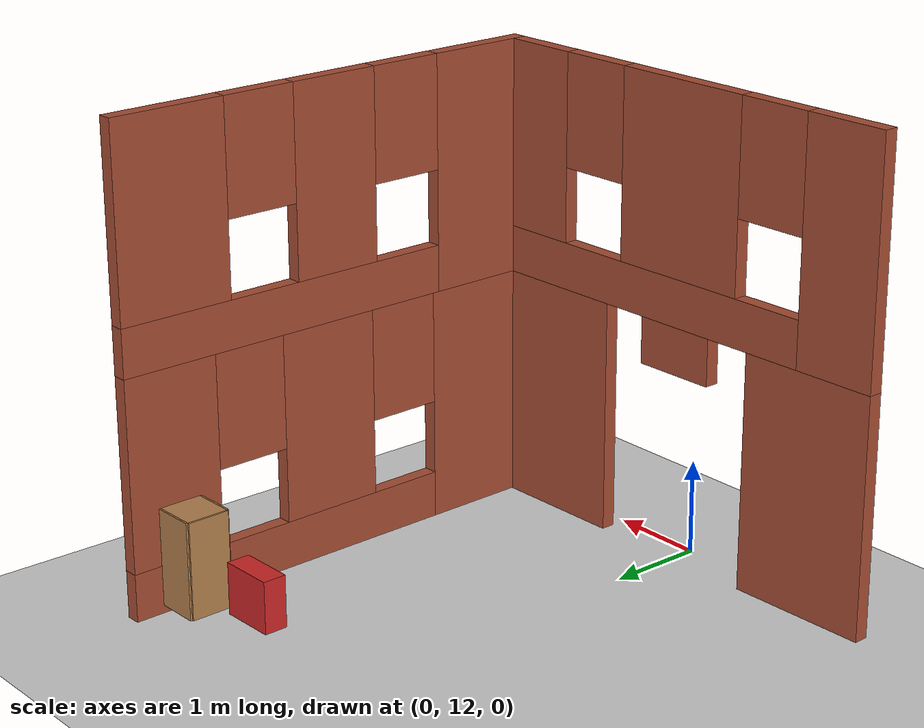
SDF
<sdf version="1.6">
 <world name="default">
  <model name="ground_plane">
   <static>1</static>
   <link name="link">
    <collision name="collision">
     <geometry><plane><normal>0 0 1</normal><size>100 100</size></plane></geometry>
     <surface><friction><ode><mu>100</mu><mu2>50</mu2></ode></friction></surface>
    </collision>
    <visual name="visual">
     <cast_shadows>0</cast_shadows>
     <geometry><plane><normal>0 0 1</normal><size>100 100</size></plane></geometry>
     <material>
      <script><uri>file://media/materials/scripts/gazebo.material</uri><name>Gazebo/Grey</name></script>
     </material>
    </visual>
   </link>
  </model>
  <model name="building1">
   <link name="Wall_10">
    <pose>0 2.425 2.5 0 -0 3.14159</pose>
    <visual name="Wall_10_Visual_1">
     <pose>0.447808 0 0.25 0 -0 0</pose>
     <geometry><box><size>4.10438 0.15 0.5</size></box></geometry>
     <material>
      <script><uri>file://media/materials/scripts/gazebo.material</uri><name>Gazebo/Bricks</name></script>
      <ambient>1 1 1 1</ambient>
      <shader type="pixel"/>
     </material>
     <meta><layer>1</layer></meta>
    </visual>
    <visual name="Wall_10_Visual_5">
     <pose>1.14562 0 1.9 0 -0 0</pose>
     <geometry><box><size>0.8 0.15 1.2</size></box></geometry>
     <material>
      <script><uri>file://media/materials/scripts/gazebo.material</uri><name>Gazebo/Bricks</name></script>
      <ambient>1 1 1 1</ambient>
      <shader type="pixel"/>
     </material>
     <meta><layer>1</layer></meta>
    </visual>
    <visual name="Wall_10_Visual_0">
     <pose>-2.05219 0 1.25 0 -0 0</pose>
     <geometry><box><size>0.895617 0.15 2.5</size></box></geometry>
     <material>
      <script><uri>file://media/materials/scripts/gazebo.material</uri><name>Gazebo/Bricks</name></script>
      <ambient>1 1 1 1</ambient>
      <shader type="pixel"/>
     </material>
     <meta><layer>1</layer></meta>
    </visual>
    <visual name="Wall_10_Visual_3">
     <pose>2.02281 0 1.5 0 -0 0</pose>
     <geometry><box><size>0.954383 0.15 2</size></box></geometry>
     <material>
      <script><uri>file://media/materials/scripts/gazebo.material</uri><name>Gazebo/Bricks</name></script>
      <ambient>1 1 1 1</ambient>
      <shader type="pixel"/>
     </material>
     <meta><layer>1</layer></meta>
    </visual>
    <visual name="Wall_10_Visual_2">
     <pose>-0.029383 0 1.5 0 -0 0</pose>
     <geometry><box><size>1.55 0.15 2</size></box></geometry>
     <material>
      <script><uri>file://media/materials/scripts/gazebo.material</uri><name>Gazebo/Bricks</name></script>
      <ambient>1 1 1 1</ambient>
      <shader type="pixel"/>
     </material>
     <meta><layer>1</layer></meta>
    </visual>
    <visual name="Wall_10_Visual_4">
     <pose>-1.20438 0 1.9 0 -0 0</pose>
     <geometry><box><size>0.8 0.15 1.2</size></box></geometry>
     <material>
      <script><uri>file://media/materials/scripts/gazebo.material</uri><name>Gazebo/Bricks</name></script>
      <ambient>1 1 1 1</ambient>
      <shader type="pixel"/>
     </material>
     <meta><layer>1</layer></meta>
    </visual>
    <collision name="Wall_10_Collision_2">
     <pose>-0.029383 0 1.5 0 -0 0</pose>
     <geometry><box><size>1.55 0.15 2</size></box></geometry>
     <surface>
      <friction>
       <ode><mu>1</mu><mu2>1</mu2><fdir1>0 0 0</fdir1><slip1>0</slip1><slip2>0</slip2></ode>
       <torsional>
        <coefficient>1</coefficient>
        <patch_radius>0</patch_radius>
        <surface_radius>0</surface_radius>
        <use_patch_radius>1</use_patch_radius>
        <ode><slip>0</slip></ode>
       </torsional>
      </friction>
      <bounce><restitution_coefficient>0</restitution_coefficient><threshold>1e+06</threshold></bounce>
      <contact>
       <collide_without_contact>0</collide_without_contact>
       <collide_without_contact_bitmask>1</collide_without_contact_bitmask>
       <collide_bitmask>1</collide_bitmask>
       <ode>
        <soft_cfm>0</soft_cfm>
        <soft_erp>0.2</soft_erp>
        <kp>1e+13</kp>
        <kd>1</kd>
        <max_vel>0.01</max_vel>
        <min_depth>0</min_depth>
       </ode>
       <bullet>
        <split_impulse>1</split_impulse>
        <split_impulse_penetration_threshold>-0.01</split_impulse_penetration_threshold>
        <soft_cfm>0</soft_cfm>
        <soft_erp>0.2</soft_erp>
        <kp>1e+13</kp>
        <kd>1</kd>
       </bullet>
      </contact>
     </surface>
    </collision>
    <collision name="Wall_10_Collision_1">
     <pose>0.447808 0 0.25 0 -0 0</pose>
     <geometry><box><size>4.10438 0.15 0.5</size></box></geometry>
     <surface>
      <friction>
       <ode><mu>1</mu><mu2>1</mu2><fdir1>0 0 0</fdir1><slip1>0</slip1><slip2>0</slip2></ode>
       <torsional>
        <coefficient>1</coefficient>
        <patch_radius>0</patch_radius>
        <surface_radius>0</surface_radius>
        <use_patch_radius>1</use_patch_radius>
        <ode><slip>0</slip></ode>
       </torsional>
      </friction>
      <bounce><restitution_coefficient>0</restitution_coefficient><threshold>1e+06</threshold></bounce>
      <contact>
       <collide_without_contact>0</collide_without_contact>
       <collide_without_contact_bitmask>1</collide_without_contact_bitmask>
       <collide_bitmask>1</collide_bitmask>
       <ode>
        <soft_cfm>0</soft_cfm>
        <soft_erp>0.2</soft_erp>
        <kp>1e+13</kp>
        <kd>1</kd>
        <max_vel>0.01</max_vel>
        <min_depth>0</min_depth>
       </ode>
       <bullet>
        <split_impulse>1</split_impulse>
        <split_impulse_penetration_threshold>-0.01</split_impulse_penetration_threshold>
        <soft_cfm>0</soft_cfm>
        <soft_erp>0.2</soft_erp>
        <kp>1e+13</kp>
        <kd>1</kd>
       </bullet>
      </contact>
     </surface>
    </collision>
    <collision name="Wall_10_Collision_5">
     <pose>1.14562 0 1.9 0 -0 0</pose>
     <geometry><box><size>0.8 0.15 1.2</size></box></geometry>
     <surface>
      <friction>
       <ode><mu>1</mu><mu2>1</mu2><fdir1>0 0 0</fdir1><slip1>0</slip1><slip2>0</slip2></ode>
       <torsional>
        <coefficient>1</coefficient>
        <patch_radius>0</patch_radius>
        <surface_radius>0</surface_radius>
        <use_patch_radius>1</use_patch_radius>
        <ode><slip>0</slip></ode>
       </torsional>
      </friction>
      <bounce><restitution_coefficient>0</restitution_coefficient><threshold>1e+06</threshold></bounce>
      <contact>
       <collide_without_contact>0</collide_without_contact>
       <collide_without_contact_bitmask>1</collide_without_contact_bitmask>
       <collide_bitmask>1</collide_bitmask>
       <ode>
        <soft_cfm>0</soft_cfm>
        <soft_erp>0.2</soft_erp>
        <kp>1e+13</kp>
        <kd>1</kd>
        <max_vel>0.01</max_vel>
        <min_depth>0</min_depth>
       </ode>
       <bullet>
        <split_impulse>1</split_impulse>
        <split_impulse_penetration_threshold>-0.01</split_impulse_penetration_threshold>
        <soft_cfm>0</soft_cfm>
        <soft_erp>0.2</soft_erp>
        <kp>1e+13</kp>
        <kd>1</kd>
       </bullet>
      </contact>
     </surface>
    </collision>
    <collision name="Wall_10_Collision_0">
     <pose>-2.05219 0 1.25 0 -0 0</pose>
     <geometry><box><size>0.895617 0.15 2.5</size></box></geometry>
     <surface>
      <friction>
       <ode><mu>1</mu><mu2>1</mu2><fdir1>0 0 0</fdir1><slip1>0</slip1><slip2>0</slip2></ode>
       <torsional>
        <coefficient>1</coefficient>
        <patch_radius>0</patch_radius>
        <surface_radius>0</surface_radius>
        <use_patch_radius>1</use_patch_radius>
        <ode><slip>0</slip></ode>
       </torsional>
      </friction>
      <bounce><restitution_coefficient>0</restitution_coefficient><threshold>1e+06</threshold></bounce>
      <contact>
       <collide_without_contact>0</collide_without_contact>
       <collide_without_contact_bitmask>1</collide_without_contact_bitmask>
       <collide_bitmask>1</collide_bitmask>
       <ode>
        <soft_cfm>0</soft_cfm>
        <soft_erp>0.2</soft_erp>
        <kp>1e+13</kp>
        <kd>1</kd>
        <max_vel>0.01</max_vel>
        <min_depth>0</min_depth>
       </ode>
       <bullet>
        <split_impulse>1</split_impulse>
        <split_impulse_penetration_threshold>-0.01</split_impulse_penetration_threshold>
        <soft_cfm>0</soft_cfm>
        <soft_erp>0.2</soft_erp>
        <kp>1e+13</kp>
        <kd>1</kd>
       </bullet>
      </contact>
     </surface>
    </collision>
    <collision name="Wall_10_Collision_4">
     <pose>-1.20438 0 1.9 0 -0 0</pose>
     <geometry><box><size>0.8 0.15 1.2</size></box></geometry>
     <surface>
      <friction>
       <ode><mu>1</mu><mu2>1</mu2><fdir1>0 0 0</fdir1><slip1>0</slip1><slip2>0</slip2></ode>
       <torsional>
        <coefficient>1</coefficient>
        <patch_radius>0</patch_radius>
        <surface_radius>0</surface_radius>
        <use_patch_radius>1</use_patch_radius>
        <ode><slip>0</slip></ode>
       </torsional>
      </friction>
      <bounce><restitution_coefficient>0</restitution_coefficient><threshold>1e+06</threshold></bounce>
      <contact>
       <collide_without_contact>0</collide_without_contact>
       <collide_without_contact_bitmask>1</collide_without_contact_bitmask>
       <collide_bitmask>1</collide_bitmask>
       <ode>
        <soft_cfm>0</soft_cfm>
        <soft_erp>0.2</soft_erp>
        <kp>1e+13</kp>
        <kd>1</kd>
        <max_vel>0.01</max_vel>
        <min_depth>0</min_depth>
       </ode>
       <bullet>
        <split_impulse>1</split_impulse>
        <split_impulse_penetration_threshold>-0.01</split_impulse_penetration_threshold>
        <soft_cfm>0</soft_cfm>
        <soft_erp>0.2</soft_erp>
        <kp>1e+13</kp>
        <kd>1</kd>
       </bullet>
      </contact>
     </surface>
    </collision>
    <collision name="Wall_10_Collision_3">
     <pose>2.02281 0 1.5 0 -0 0</pose>
     <geometry><box><size>0.954383 0.15 2</size></box></geometry>
     <surface>
      <friction>
       <ode><mu>1</mu><mu2>1</mu2><fdir1>0 0 0</fdir1><slip1>0</slip1><slip2>0</slip2></ode>
       <torsional>
        <coefficient>1</coefficient>
        <patch_radius>0</patch_radius>
        <surface_radius>0</surface_radius>
        <use_patch_radius>1</use_patch_radius>
        <ode><slip>0</slip></ode>
       </torsional>
      </friction>
      <bounce><restitution_coefficient>0</restitution_coefficient><threshold>1e+06</threshold></bounce>
      <contact>
       <collide_without_contact>0</collide_without_contact>
       <collide_without_contact_bitmask>1</collide_without_contact_bitmask>
       <collide_bitmask>1</collide_bitmask>
       <ode>
        <soft_cfm>0</soft_cfm>
        <soft_erp>0.2</soft_erp>
        <kp>1e+13</kp>
        <kd>1</kd>
        <max_vel>0.01</max_vel>
        <min_depth>0</min_depth>
       </ode>
       <bullet>
        <split_impulse>1</split_impulse>
        <split_impulse_penetration_threshold>-0.01</split_impulse_penetration_threshold>
        <soft_cfm>0</soft_cfm>
        <soft_erp>0.2</soft_erp>
        <kp>1e+13</kp>
        <kd>1</kd>
       </bullet>
      </contact>
     </surface>
    </collision>
   </link>
   <link name="Wall_11">
    <pose>-2.425 0 2.5 0 0 -1.5708</pose>
    <visual name="Wall_11_Visual_0">
     <pose>-1.91127 0 1.25 0 -0 0</pose>
     <geometry><box><size>1.17746 0.15 2.5</size></box></geometry>
     <material>
      <script><uri>file://media/materials/scripts/gazebo.material</uri><name>Gazebo/Bricks</name></script>
      <ambient>1 1 1 1</ambient>
      <shader type="pixel"/>
     </material>
     <meta><layer>1</layer></meta>
    </visual>
    <visual name="Wall_11_Visual_4">
     <pose>-0.922536 0 1.9 0 -0 0</pose>
     <geometry><box><size>0.8 0.15 1.2</size></box></geometry>
     <material>
      <script><uri>file://media/materials/scripts/gazebo.material</uri><name>Gazebo/Bricks</name></script>
      <ambient>1 1 1 1</ambient>
      <shader type="pixel"/>
     </material>
     <meta><layer>1</layer></meta>
    </visual>
    <visual name="Wall_11_Visual_1">
     <pose>0.588732 0 0.25 0 -0 0</pose>
     <geometry><box><size>3.82254 0.15 0.5</size></box></geometry>
     <material>
      <script><uri>file://media/materials/scripts/gazebo.material</uri><name>Gazebo/Bricks</name></script>
      <ambient>1 1 1 1</ambient>
      <shader type="pixel"/>
     </material>
     <meta><layer>1</layer></meta>
    </visual>
    <visual name="Wall_11_Visual_5">
     <pose>0.857464 0 1.9 0 -0 0</pose>
     <geometry><box><size>0.8 0.15 1.2</size></box></geometry>
     <material>
      <script><uri>file://media/materials/scripts/gazebo.material</uri><name>Gazebo/Bricks</name></script>
      <ambient>1 1 1 1</ambient>
      <shader type="pixel"/>
     </material>
     <meta><layer>1</layer></meta>
    </visual>
    <visual name="Wall_11_Visual_3">
     <pose>1.87873 0 1.5 0 -0 0</pose>
     <geometry><box><size>1.24254 0.15 2</size></box></geometry>
     <material>
      <script><uri>file://media/materials/scripts/gazebo.material</uri><name>Gazebo/Bricks</name></script>
      <ambient>1 1 1 1</ambient>
      <shader type="pixel"/>
     </material>
     <meta><layer>1</layer></meta>
    </visual>
    <visual name="Wall_11_Visual_2">
     <pose>-0.032536 0 1.5 0 -0 0</pose>
     <geometry><box><size>0.98 0.15 2</size></box></geometry>
     <material>
      <script><uri>file://media/materials/scripts/gazebo.material</uri><name>Gazebo/Bricks</name></script>
      <ambient>1 1 1 1</ambient>
      <shader type="pixel"/>
     </material>
     <meta><layer>1</layer></meta>
    </visual>
    <collision name="Wall_11_Collision_5">
     <pose>0.857464 0 1.9 0 -0 0</pose>
     <geometry><box><size>0.8 0.15 1.2</size></box></geometry>
     <surface>
      <friction>
       <ode><mu>1</mu><mu2>1</mu2><fdir1>0 0 0</fdir1><slip1>0</slip1><slip2>0</slip2></ode>
       <torsional>
        <coefficient>1</coefficient>
        <patch_radius>0</patch_radius>
        <surface_radius>0</surface_radius>
        <use_patch_radius>1</use_patch_radius>
        <ode><slip>0</slip></ode>
       </torsional>
      </friction>
      <bounce><restitution_coefficient>0</restitution_coefficient><threshold>1e+06</threshold></bounce>
      <contact>
       <collide_without_contact>0</collide_without_contact>
       <collide_without_contact_bitmask>1</collide_without_contact_bitmask>
       <collide_bitmask>1</collide_bitmask>
       <ode>
        <soft_cfm>0</soft_cfm>
        <soft_erp>0.2</soft_erp>
        <kp>1e+13</kp>
        <kd>1</kd>
        <max_vel>0.01</max_vel>
        <min_depth>0</min_depth>
       </ode>
       <bullet>
        <split_impulse>1</split_impulse>
        <split_impulse_penetration_threshold>-0.01</split_impulse_penetration_threshold>
        <soft_cfm>0</soft_cfm>
        <soft_erp>0.2</soft_erp>
        <kp>1e+13</kp>
        <kd>1</kd>
       </bullet>
      </contact>
     </surface>
    </collision>
    <collision name="Wall_11_Collision_4">
     <pose>-0.922536 0 1.9 0 -0 0</pose>
     <geometry><box><size>0.8 0.15 1.2</size></box></geometry>
     <surface>
      <friction>
       <ode><mu>1</mu><mu2>1</mu2><fdir1>0 0 0</fdir1><slip1>0</slip1><slip2>0</slip2></ode>
       <torsional>
        <coefficient>1</coefficient>
        <patch_radius>0</patch_radius>
        <surface_radius>0</surface_radius>
        <use_patch_radius>1</use_patch_radius>
        <ode><slip>0</slip></ode>
       </torsional>
      </friction>
      <bounce><restitution_coefficient>0</restitution_coefficient><threshold>1e+06</threshold></bounce>
      <contact>
       <collide_without_contact>0</collide_without_contact>
       <collide_without_contact_bitmask>1</collide_without_contact_bitmask>
       <collide_bitmask>1</collide_bitmask>
       <ode>
        <soft_cfm>0</soft_cfm>
        <soft_erp>0.2</soft_erp>
        <kp>1e+13</kp>
        <kd>1</kd>
        <max_vel>0.01</max_vel>
        <min_depth>0</min_depth>
       </ode>
       <bullet>
        <split_impulse>1</split_impulse>
        <split_impulse_penetration_threshold>-0.01</split_impulse_penetration_threshold>
        <soft_cfm>0</soft_cfm>
        <soft_erp>0.2</soft_erp>
        <kp>1e+13</kp>
        <kd>1</kd>
       </bullet>
      </contact>
     </surface>
    </collision>
    <collision name="Wall_11_Collision_2">
     <pose>-0.032536 0 1.5 0 -0 0</pose>
     <geometry><box><size>0.98 0.15 2</size></box></geometry>
     <surface>
      <friction>
       <ode><mu>1</mu><mu2>1</mu2><fdir1>0 0 0</fdir1><slip1>0</slip1><slip2>0</slip2></ode>
       <torsional>
        <coefficient>1</coefficient>
        <patch_radius>0</patch_radius>
        <surface_radius>0</surface_radius>
        <use_patch_radius>1</use_patch_radius>
        <ode><slip>0</slip></ode>
       </torsional>
      </friction>
      <bounce><restitution_coefficient>0</restitution_coefficient><threshold>1e+06</threshold></bounce>
      <contact>
       <collide_without_contact>0</collide_without_contact>
       <collide_without_contact_bitmask>1</collide_without_contact_bitmask>
       <collide_bitmask>1</collide_bitmask>
       <ode>
        <soft_cfm>0</soft_cfm>
        <soft_erp>0.2</soft_erp>
        <kp>1e+13</kp>
        <kd>1</kd>
        <max_vel>0.01</max_vel>
        <min_depth>0</min_depth>
       </ode>
       <bullet>
        <split_impulse>1</split_impulse>
        <split_impulse_penetration_threshold>-0.01</split_impulse_penetration_threshold>
        <soft_cfm>0</soft_cfm>
        <soft_erp>0.2</soft_erp>
        <kp>1e+13</kp>
        <kd>1</kd>
       </bullet>
      </contact>
     </surface>
    </collision>
    <collision name="Wall_11_Collision_3">
     <pose>1.87873 0 1.5 0 -0 0</pose>
     <geometry><box><size>1.24254 0.15 2</size></box></geometry>
     <surface>
      <friction>
       <ode><mu>1</mu><mu2>1</mu2><fdir1>0 0 0</fdir1><slip1>0</slip1><slip2>0</slip2></ode>
       <torsional>
        <coefficient>1</coefficient>
        <patch_radius>0</patch_radius>
        <surface_radius>0</surface_radius>
        <use_patch_radius>1</use_patch_radius>
        <ode><slip>0</slip></ode>
       </torsional>
      </friction>
      <bounce><restitution_coefficient>0</restitution_coefficient><threshold>1e+06</threshold></bounce>
      <contact>
       <collide_without_contact>0</collide_without_contact>
       <collide_without_contact_bitmask>1</collide_without_contact_bitmask>
       <collide_bitmask>1</collide_bitmask>
       <ode>
        <soft_cfm>0</soft_cfm>
        <soft_erp>0.2</soft_erp>
        <kp>1e+13</kp>
        <kd>1</kd>
        <max_vel>0.01</max_vel>
        <min_depth>0</min_depth>
       </ode>
       <bullet>
        <split_impulse>1</split_impulse>
        <split_impulse_penetration_threshold>-0.01</split_impulse_penetration_threshold>
        <soft_cfm>0</soft_cfm>
        <soft_erp>0.2</soft_erp>
        <kp>1e+13</kp>
        <kd>1</kd>
       </bullet>
      </contact>
     </surface>
    </collision>
    <collision name="Wall_11_Collision_0">
     <pose>-1.91127 0 1.25 0 -0 0</pose>
     <geometry><box><size>1.17746 0.15 2.5</size></box></geometry>
     <surface>
      <friction>
       <ode><mu>1</mu><mu2>1</mu2><fdir1>0 0 0</fdir1><slip1>0</slip1><slip2>0</slip2></ode>
       <torsional>
        <coefficient>1</coefficient>
        <patch_radius>0</patch_radius>
        <surface_radius>0</surface_radius>
        <use_patch_radius>1</use_patch_radius>
        <ode><slip>0</slip></ode>
       </torsional>
      </friction>
      <bounce><restitution_coefficient>0</restitution_coefficient><threshold>1e+06</threshold></bounce>
      <contact>
       <collide_without_contact>0</collide_without_contact>
       <collide_without_contact_bitmask>1</collide_without_contact_bitmask>
       <collide_bitmask>1</collide_bitmask>
       <ode>
        <soft_cfm>0</soft_cfm>
        <soft_erp>0.2</soft_erp>
        <kp>1e+13</kp>
        <kd>1</kd>
        <max_vel>0.01</max_vel>
        <min_depth>0</min_depth>
       </ode>
       <bullet>
        <split_impulse>1</split_impulse>
        <split_impulse_penetration_threshold>-0.01</split_impulse_penetration_threshold>
        <soft_cfm>0</soft_cfm>
        <soft_erp>0.2</soft_erp>
        <kp>1e+13</kp>
        <kd>1</kd>
       </bullet>
      </contact>
     </surface>
    </collision>
    <collision name="Wall_11_Collision_1">
     <pose>0.588732 0 0.25 0 -0 0</pose>
     <geometry><box><size>3.82254 0.15 0.5</size></box></geometry>
     <surface>
      <friction>
       <ode><mu>1</mu><mu2>1</mu2><fdir1>0 0 0</fdir1><slip1>0</slip1><slip2>0</slip2></ode>
       <torsional>
        <coefficient>1</coefficient>
        <patch_radius>0</patch_radius>
        <surface_radius>0</surface_radius>
        <use_patch_radius>1</use_patch_radius>
        <ode><slip>0</slip></ode>
       </torsional>
      </friction>
      <bounce><restitution_coefficient>0</restitution_coefficient><threshold>1e+06</threshold></bounce>
      <contact>
       <collide_without_contact>0</collide_without_contact>
       <collide_without_contact_bitmask>1</collide_without_contact_bitmask>
       <collide_bitmask>1</collide_bitmask>
       <ode>
        <soft_cfm>0</soft_cfm>
        <soft_erp>0.2</soft_erp>
        <kp>1e+13</kp>
        <kd>1</kd>
        <max_vel>0.01</max_vel>
        <min_depth>0</min_depth>
       </ode>
       <bullet>
        <split_impulse>1</split_impulse>
        <split_impulse_penetration_threshold>-0.01</split_impulse_penetration_threshold>
        <soft_cfm>0</soft_cfm>
        <soft_erp>0.2</soft_erp>
        <kp>1e+13</kp>
        <kd>1</kd>
       </bullet>
      </contact>
     </surface>
    </collision>
   </link>
   <link name="Wall_4">
    <pose>0 2.425 0 0 -0 3.14159</pose>
    <visual name="Wall_4_Visual_1">
     <pose>1.71303 0 1.25 0 -0 0</pose>
     <geometry><box><size>1.57394 0.15 2.5</size></box></geometry>
     <material>
      <script><uri>file://media/materials/scripts/gazebo.material</uri><name>Gazebo/Bricks</name></script>
      <ambient>1 1 1 1</ambient>
      <shader type="pixel"/>
     </material>
     <meta><layer>0</layer></meta>
    </visual>
    <visual name="Wall_4_Visual_2">
     <pose>-0.023941 0 2.25 0 -0 0</pose>
     <geometry><box><size>0.9 0.15 0.5</size></box></geometry>
     <material>
      <script><uri>file://media/materials/scripts/gazebo.material</uri><name>Gazebo/Bricks</name></script>
      <ambient>1 1 1 1</ambient>
      <shader type="pixel"/>
     </material>
     <meta><layer>0</layer></meta>
    </visual>
    <visual name="Wall_4_Visual_0">
     <pose>-1.73697 0 1.25 0 -0 0</pose>
     <geometry><box><size>1.52606 0.15 2.5</size></box></geometry>
     <material>
      <script><uri>file://media/materials/scripts/gazebo.material</uri><name>Gazebo/Bricks</name></script>
      <ambient>1 1 1 1</ambient>
      <shader type="pixel"/>
     </material>
     <meta><layer>0</layer></meta>
    </visual>
    <collision name="Wall_4_Collision_0">
     <pose>-1.78697 0 1.25 0 -0 0</pose>
     <geometry><box><size>1.52606 0.15 2.5</size></box></geometry>
     <surface>
      <friction>
       <ode><mu>1</mu><mu2>1</mu2><fdir1>0 0 0</fdir1><slip1>0</slip1><slip2>0</slip2></ode>
       <torsional>
        <coefficient>1</coefficient>
        <patch_radius>0</patch_radius>
        <surface_radius>0</surface_radius>
        <use_patch_radius>1</use_patch_radius>
        <ode><slip>0</slip></ode>
       </torsional>
      </friction>
      <bounce><restitution_coefficient>0</restitution_coefficient><threshold>1e+06</threshold></bounce>
      <contact>
       <collide_without_contact>0</collide_without_contact>
       <collide_without_contact_bitmask>1</collide_without_contact_bitmask>
       <collide_bitmask>1</collide_bitmask>
       <ode>
        <soft_cfm>0</soft_cfm>
        <soft_erp>0.2</soft_erp>
        <kp>1e+13</kp>
        <kd>1</kd>
        <max_vel>0.01</max_vel>
        <min_depth>0</min_depth>
       </ode>
       <bullet>
        <split_impulse>1</split_impulse>
        <split_impulse_penetration_threshold>-0.01</split_impulse_penetration_threshold>
        <soft_cfm>0</soft_cfm>
        <soft_erp>0.2</soft_erp>
        <kp>1e+13</kp>
        <kd>1</kd>
       </bullet>
      </contact>
     </surface>
    </collision>
    <collision name="Wall_4_Collision_2">
     <pose>-0.023941 0 2.25 0 -0 0</pose>
     <geometry><box><size>0.9 0.15 0.5</size></box></geometry>
     <surface>
      <friction>
       <ode><mu>1</mu><mu2>1</mu2><fdir1>0 0 0</fdir1><slip1>0</slip1><slip2>0</slip2></ode>
       <torsional>
        <coefficient>1</coefficient>
        <patch_radius>0</patch_radius>
        <surface_radius>0</surface_radius>
        <use_patch_radius>1</use_patch_radius>
        <ode><slip>0</slip></ode>
       </torsional>
      </friction>
      <bounce><restitution_coefficient>0</restitution_coefficient><threshold>1e+06</threshold></bounce>
      <contact>
       <collide_without_contact>0</collide_without_contact>
       <collide_without_contact_bitmask>1</collide_without_contact_bitmask>
       <collide_bitmask>1</collide_bitmask>
       <ode>
        <soft_cfm>0</soft_cfm>
        <soft_erp>0.2</soft_erp>
        <kp>1e+13</kp>
        <kd>1</kd>
        <max_vel>0.01</max_vel>
        <min_depth>0</min_depth>
       </ode>
       <bullet>
        <split_impulse>1</split_impulse>
        <split_impulse_penetration_threshold>-0.01</split_impulse_penetration_threshold>
        <soft_cfm>0</soft_cfm>
        <soft_erp>0.2</soft_erp>
        <kp>1e+13</kp>
        <kd>1</kd>
       </bullet>
      </contact>
     </surface>
    </collision>
    <collision name="Wall_4_Collision_1">
     <pose>1.71303 0 1.25 0 -0 0</pose>
     <geometry><box><size>1.57394 0.15 2.5</size></box></geometry>
     <surface>
      <friction>
       <ode><mu>1</mu><mu2>1</mu2><fdir1>0 0 0</fdir1><slip1>0</slip1><slip2>0</slip2></ode>
       <torsional>
        <coefficient>1</coefficient>
        <patch_radius>0</patch_radius>
        <surface_radius>0</surface_radius>
        <use_patch_radius>1</use_patch_radius>
        <ode><slip>0</slip></ode>
       </torsional>
      </friction>
      <bounce><restitution_coefficient>0</restitution_coefficient><threshold>1e+06</threshold></bounce>
      <contact>
       <collide_without_contact>0</collide_without_contact>
       <collide_without_contact_bitmask>1</collide_without_contact_bitmask>
       <collide_bitmask>1</collide_bitmask>
       <ode>
        <soft_cfm>0</soft_cfm>
        <soft_erp>0.2</soft_erp>
        <kp>1e+13</kp>
        <kd>1</kd>
        <max_vel>0.01</max_vel>
        <min_depth>0</min_depth>
       </ode>
       <bullet>
        <split_impulse>1</split_impulse>
        <split_impulse_penetration_threshold>-0.01</split_impulse_penetration_threshold>
        <soft_cfm>0</soft_cfm>
        <soft_erp>0.2</soft_erp>
        <kp>1e+13</kp>
        <kd>1</kd>
       </bullet>
      </contact>
     </surface>
    </collision>
   </link>
   <link name="Wall_5">
    <pose>-2.425 0 0 0 0 -1.5708</pose>
    <visual name="Wall_5_Visual_4">
     <pose>-0.848482 0 1.9 0 -0 0</pose>
     <geometry><box><size>0.8 0.15 1.2</size></box></geometry>
     <material>
      <script><uri>file://media/materials/scripts/gazebo.material</uri><name>Gazebo/Bricks</name></script>
      <ambient>1 1 1 1</ambient>
      <shader type="pixel"/>
     </material>
     <meta><layer>0</layer></meta>
    </visual>
    <visual name="Wall_5_Visual_5">
     <pose>1.06782 0 1.9 0 -0 0</pose>
     <geometry><box><size>0.8 0.15 1.2</size></box></geometry>
     <material>
      <script><uri>file://media/materials/scripts/gazebo.material</uri><name>Gazebo/Bricks</name></script>
      <ambient>1 1 1 1</ambient>
      <shader type="pixel"/>
     </material>
     <meta><layer>0</layer></meta>
    </visual>
    <visual name="Wall_5_Visual_3">
     <pose>1.98391 0 1.5 0 -0 0</pose>
     <geometry><box><size>1.03218 0.15 2</size></box></geometry>
     <material>
      <script><uri>file://media/materials/scripts/gazebo.material</uri><name>Gazebo/Bricks</name></script>
      <ambient>1 1 1 1</ambient>
      <shader type="pixel"/>
     </material>
     <meta><layer>0</layer></meta>
    </visual>
    <visual name="Wall_5_Visual_0">
     <pose>-1.87424 0 1.25 0 -0 0</pose>
     <geometry><box><size>1.25152 0.15 2.5</size></box></geometry>
     <material>
      <script><uri>file://media/materials/scripts/gazebo.material</uri><name>Gazebo/Bricks</name></script>
      <ambient>1 1 1 1</ambient>
      <shader type="pixel"/>
     </material>
     <meta><layer>0</layer></meta>
    </visual>
    <visual name="Wall_5_Visual_2">
     <pose>0.109669 0 1.5 0 -0 0</pose>
     <geometry><box><size>1.1163 0.15 2</size></box></geometry>
     <material>
      <script><uri>file://media/materials/scripts/gazebo.material</uri><name>Gazebo/Bricks</name></script>
      <ambient>1 1 1 1</ambient>
      <shader type="pixel"/>
     </material>
     <meta><layer>0</layer></meta>
    </visual>
    <visual name="Wall_5_Visual_1">
     <pose>0.625759 0 0.25 0 -0 0</pose>
     <geometry><box><size>3.74848 0.15 0.5</size></box></geometry>
     <material>
      <script><uri>file://media/materials/scripts/gazebo.material</uri><name>Gazebo/Bricks</name></script>
      <ambient>1 1 1 1</ambient>
      <shader type="pixel"/>
     </material>
     <meta><layer>0</layer></meta>
    </visual>
    <collision name="Wall_5_Collision_0">
     <pose>-1.87424 0 1.25 0 -0 0</pose>
     <geometry><box><size>1.25152 0.15 2.5</size></box></geometry>
     <surface>
      <friction>
       <ode><mu>1</mu><mu2>1</mu2><fdir1>0 0 0</fdir1><slip1>0</slip1><slip2>0</slip2></ode>
       <torsional>
        <coefficient>1</coefficient>
        <patch_radius>0</patch_radius>
        <surface_radius>0</surface_radius>
        <use_patch_radius>1</use_patch_radius>
        <ode><slip>0</slip></ode>
       </torsional>
      </friction>
      <bounce><restitution_coefficient>0</restitution_coefficient><threshold>1e+06</threshold></bounce>
      <contact>
       <collide_without_contact>0</collide_without_contact>
       <collide_without_contact_bitmask>1</collide_without_contact_bitmask>
       <collide_bitmask>1</collide_bitmask>
       <ode>
        <soft_cfm>0</soft_cfm>
        <soft_erp>0.2</soft_erp>
        <kp>1e+13</kp>
        <kd>1</kd>
        <max_vel>0.01</max_vel>
        <min_depth>0</min_depth>
       </ode>
       <bullet>
        <split_impulse>1</split_impulse>
        <split_impulse_penetration_threshold>-0.01</split_impulse_penetration_threshold>
        <soft_cfm>0</soft_cfm>
        <soft_erp>0.2</soft_erp>
        <kp>1e+13</kp>
        <kd>1</kd>
       </bullet>
      </contact>
     </surface>
    </collision>
    <collision name="Wall_5_Collision_1">
     <pose>0.625759 0 0.25 0 -0 0</pose>
     <geometry><box><size>3.74848 0.15 0.5</size></box></geometry>
     <surface>
      <friction>
       <ode><mu>1</mu><mu2>1</mu2><fdir1>0 0 0</fdir1><slip1>0</slip1><slip2>0</slip2></ode>
       <torsional>
        <coefficient>1</coefficient>
        <patch_radius>0</patch_radius>
        <surface_radius>0</surface_radius>
        <use_patch_radius>1</use_patch_radius>
        <ode><slip>0</slip></ode>
       </torsional>
      </friction>
      <bounce><restitution_coefficient>0</restitution_coefficient><threshold>1e+06</threshold></bounce>
      <contact>
       <collide_without_contact>0</collide_without_contact>
       <collide_without_contact_bitmask>1</collide_without_contact_bitmask>
       <collide_bitmask>1</collide_bitmask>
       <ode>
        <soft_cfm>0</soft_cfm>
        <soft_erp>0.2</soft_erp>
        <kp>1e+13</kp>
        <kd>1</kd>
        <max_vel>0.01</max_vel>
        <min_depth>0</min_depth>
       </ode>
       <bullet>
        <split_impulse>1</split_impulse>
        <split_impulse_penetration_threshold>-0.01</split_impulse_penetration_threshold>
        <soft_cfm>0</soft_cfm>
        <soft_erp>0.2</soft_erp>
        <kp>1e+13</kp>
        <kd>1</kd>
       </bullet>
      </contact>
     </surface>
    </collision>
    <collision name="Wall_5_Collision_3">
     <pose>1.98391 0 1.5 0 -0 0</pose>
     <geometry><box><size>1.03218 0.15 2</size></box></geometry>
     <surface>
      <friction>
       <ode><mu>1</mu><mu2>1</mu2><fdir1>0 0 0</fdir1><slip1>0</slip1><slip2>0</slip2></ode>
       <torsional>
        <coefficient>1</coefficient>
        <patch_radius>0</patch_radius>
        <surface_radius>0</surface_radius>
        <use_patch_radius>1</use_patch_radius>
        <ode><slip>0</slip></ode>
       </torsional>
      </friction>
      <bounce><restitution_coefficient>0</restitution_coefficient><threshold>1e+06</threshold></bounce>
      <contact>
       <collide_without_contact>0</collide_without_contact>
       <collide_without_contact_bitmask>1</collide_without_contact_bitmask>
       <collide_bitmask>1</collide_bitmask>
       <ode>
        <soft_cfm>0</soft_cfm>
        <soft_erp>0.2</soft_erp>
        <kp>1e+13</kp>
        <kd>1</kd>
        <max_vel>0.01</max_vel>
        <min_depth>0</min_depth>
       </ode>
       <bullet>
        <split_impulse>1</split_impulse>
        <split_impulse_penetration_threshold>-0.01</split_impulse_penetration_threshold>
        <soft_cfm>0</soft_cfm>
        <soft_erp>0.2</soft_erp>
        <kp>1e+13</kp>
        <kd>1</kd>
       </bullet>
      </contact>
     </surface>
    </collision>
    <collision name="Wall_5_Collision_5">
     <pose>1.06782 0 1.9 0 -0 0</pose>
     <geometry><box><size>0.8 0.15 1.2</size></box></geometry>
     <surface>
      <friction>
       <ode><mu>1</mu><mu2>1</mu2><fdir1>0 0 0</fdir1><slip1>0</slip1><slip2>0</slip2></ode>
       <torsional>
        <coefficient>1</coefficient>
        <patch_radius>0</patch_radius>
        <surface_radius>0</surface_radius>
        <use_patch_radius>1</use_patch_radius>
        <ode><slip>0</slip></ode>
       </torsional>
      </friction>
      <bounce><restitution_coefficient>0</restitution_coefficient><threshold>1e+06</threshold></bounce>
      <contact>
       <collide_without_contact>0</collide_without_contact>
       <collide_without_contact_bitmask>1</collide_without_contact_bitmask>
       <collide_bitmask>1</collide_bitmask>
       <ode>
        <soft_cfm>0</soft_cfm>
        <soft_erp>0.2</soft_erp>
        <kp>1e+13</kp>
        <kd>1</kd>
        <max_vel>0.01</max_vel>
        <min_depth>0</min_depth>
       </ode>
       <bullet>
        <split_impulse>1</split_impulse>
        <split_impulse_penetration_threshold>-0.01</split_impulse_penetration_threshold>
        <soft_cfm>0</soft_cfm>
        <soft_erp>0.2</soft_erp>
        <kp>1e+13</kp>
        <kd>1</kd>
       </bullet>
      </contact>
     </surface>
    </collision>
    <collision name="Wall_5_Collision_4">
     <pose>-0.848482 0 1.9 0 -0 0</pose>
     <geometry><box><size>0.8 0.15 1.2</size></box></geometry>
     <surface>
      <friction>
       <ode><mu>1</mu><mu2>1</mu2><fdir1>0 0 0</fdir1><slip1>0</slip1><slip2>0</slip2></ode>
       <torsional>
        <coefficient>1</coefficient>
        <patch_radius>0</patch_radius>
        <surface_radius>0</surface_radius>
        <use_patch_radius>1</use_patch_radius>
        <ode><slip>0</slip></ode>
       </torsional>
      </friction>
      <bounce><restitution_coefficient>0</restitution_coefficient><threshold>1e+06</threshold></bounce>
      <contact>
       <collide_without_contact>0</collide_without_contact>
       <collide_without_contact_bitmask>1</collide_without_contact_bitmask>
       <collide_bitmask>1</collide_bitmask>
       <ode>
        <soft_cfm>0</soft_cfm>
        <soft_erp>0.2</soft_erp>
        <kp>1e+13</kp>
        <kd>1</kd>
        <max_vel>0.01</max_vel>
        <min_depth>0</min_depth>
       </ode>
       <bullet>
        <split_impulse>1</split_impulse>
        <split_impulse_penetration_threshold>-0.01</split_impulse_penetration_threshold>
        <soft_cfm>0</soft_cfm>
        <soft_erp>0.2</soft_erp>
        <kp>1e+13</kp>
        <kd>1</kd>
       </bullet>
      </contact>
     </surface>
    </collision>
    <collision name="Wall_5_Collision_2">
     <pose>0.109669 0 1.5 0 -0 0</pose>
     <geometry><box><size>1.1163 0.15 2</size></box></geometry>
     <surface>
      <friction>
       <ode><mu>1</mu><mu2>1</mu2><fdir1>0 0 0</fdir1><slip1>0</slip1><slip2>0</slip2></ode>
       <torsional>
        <coefficient>1</coefficient>
        <patch_radius>0</patch_radius>
        <surface_radius>0</surface_radius>
        <use_patch_radius>1</use_patch_radius>
        <ode><slip>0</slip></ode>
       </torsional>
      </friction>
      <bounce><restitution_coefficient>0</restitution_coefficient><threshold>1e+06</threshold></bounce>
      <contact>
       <collide_without_contact>0</collide_without_contact>
       <collide_without_contact_bitmask>1</collide_without_contact_bitmask>
       <collide_bitmask>1</collide_bitmask>
       <ode>
        <soft_cfm>0</soft_cfm>
        <soft_erp>0.2</soft_erp>
        <kp>1e+13</kp>
        <kd>1</kd>
        <max_vel>0.01</max_vel>
        <min_depth>0</min_depth>
       </ode>
       <bullet>
        <split_impulse>1</split_impulse>
        <split_impulse_penetration_threshold>-0.01</split_impulse_penetration_threshold>
        <soft_cfm>0</soft_cfm>
        <soft_erp>0.2</soft_erp>
        <kp>1e+13</kp>
        <kd>1</kd>
       </bullet>
      </contact>
     </surface>
    </collision>
   </link>
   <link name="link_1">
    <inertial>
     <mass>0.0689277</mass>
     <inertia>
      <ixx>0.00189334</ixx>
      <ixy>0</ixy>
      <ixz>0</ixz>
      <iyy>0.00334986</iyy>
      <iyz>0</iyz>
      <izz>0.00210027</izz>
     </inertia>
    </inertial>
    <pose>-0.712421 -2.24257 0.823376 0 -0 0</pose>
    <gravity>0</gravity>
    <visual name="visual">
     <geometry><box><size>0.556426 0.23672 0.523053</size></box></geometry>
     <material>
      <lighting>1</lighting>
      <script><uri>file://media/materials/scripts/gazebo.material</uri><name>Gazebo/Red</name></script>
      <shader type="pixel"><normal_map>__default__</normal_map></shader>
      <ambient>1 0 0 1</ambient>
      <diffuse>1 0 0 1</diffuse>
      <specular>0.1 0.1 0.1 1</specular>
      <emissive>0 0 0 1</emissive>
     </material>
    </visual>
    <collision name="collision">
     <geometry><box><size>0.556426 0.23672 0.523053</size></box></geometry>
     <surface>
      <friction>
       <ode><mu>1</mu><mu2>1</mu2><fdir1>0 0 0</fdir1><slip1>0</slip1><slip2>0</slip2></ode>
       <torsional>
        <coefficient>1</coefficient>
        <patch_radius>0</patch_radius>
        <surface_radius>0</surface_radius>
        <use_patch_radius>1</use_patch_radius>
        <ode><slip>0</slip></ode>
       </torsional>
      </friction>
      <bounce><restitution_coefficient>0</restitution_coefficient><threshold>1e+06</threshold></bounce>
      <contact>
       <collide_without_contact>0</collide_without_contact>
       <collide_without_contact_bitmask>1</collide_without_contact_bitmask>
       <collide_bitmask>1</collide_bitmask>
       <ode>
        <soft_cfm>0</soft_cfm>
        <soft_erp>0.2</soft_erp>
        <kp>1e+13</kp>
        <kd>1</kd>
        <max_vel>0.01</max_vel>
        <min_depth>0</min_depth>
       </ode>
       <bullet>
        <split_impulse>1</split_impulse>
        <split_impulse_penetration_threshold>-0.01</split_impulse_penetration_threshold>
        <soft_cfm>0</soft_cfm>
        <soft_erp>0.2</soft_erp>
        <kp>1e+13</kp>
        <kd>1</kd>
       </bullet>
      </contact>
     </surface>
    </collision>
   </link>
   <model name="cabinet">
    <static>1</static>
    <link name="cabinet_bottom_plate">
     <inertial>
      <pose>0 0 -1 0 -0 0</pose>
      <inertia><ixx>2.05</ixx><ixy>0</ixy><ixz>0</ixz><iyy>2.05</iyy><iyz>0</iyz><izz>2.05</izz></inertia>
      <mass>25</mass>
     </inertial>
     <collision name="cabinet_bottom_plate_geom">
      <pose>0 0 0.01 0 -0 0</pose>
      <geometry><box><size>0.45 0.45 0.02</size></box></geometry>
     </collision>
     <visual name="cabinet_bottom_plate_geom_visual">
      <pose>0 0 0.01 0 -0 0</pose>
      <geometry><box><size>0.45 0.45 0.02</size></box></geometry>
      <material>
       <script><uri>file://media/materials/scripts/gazebo.material</uri><name>Gazebo/Wood</name></script>
      </material>
     </visual>
     <collision name="cabinet_bottom_plate_geom_cabinet_back_plate">
      <pose>0.235 0 0.51 0 -0 0</pose>
      <geometry><box><size>0.02 0.45 1.02</size></box></geometry>
     </collision>
     <visual name="cabinet_bottom_plate_geom_cabinet_back_plate_visual">
      <pose>0.235 0 0.51 0 -0 0</pose>
      <geometry><box><size>0.02 0.45 1.02</size></box></geometry>
      <material>
       <script><uri>file://media/materials/scripts/gazebo.material</uri><name>Gazebo/Wood</name></script>
      </material>
     </visual>
     <collision name="cabinet_bottom_plate_geom_cabinet_left_plate">
      <pose>0 0.235 0.51 0 -0 0</pose>
      <geometry><box><size>0.45 0.02 1.02</size></box></geometry>
     </collision>
     <visual name="cabinet_bottom_plate_geom_cabinet_left_plate_visual">
      <pose>0 0.235 0.51 0 -0 0</pose>
      <geometry><box><size>0.45 0.02 1.02</size></box></geometry>
      <material>
       <script><uri>file://media/materials/scripts/gazebo.material</uri><name>Gazebo/Wood</name></script>
      </material>
     </visual>
     <collision name="cabinet_bottom_plate_geom_cabinet_middle_plate">
      <pose>0 0 0.51 0 -0 0</pose>
      <geometry><box><size>0.45 0.45 0.02</size></box></geometry>
     </collision>
     <visual name="cabinet_bottom_plate_geom_cabinet_middle_plate_visual">
      <pose>0 0 0.51 0 -0 0</pose>
      <geometry><box><size>0.45 0.45 0.02</size></box></geometry>
      <material>
       <script><uri>file://media/materials/scripts/gazebo.material</uri><name>Gazebo/Wood</name></script>
      </material>
     </visual>
     <collision name="cabinet_bottom_plate_geom_cabinet_right_plate">
      <pose>0 -0.235 0.51 0 -0 0</pose>
      <geometry><box><size>0.45 0.02 1.02</size></box></geometry>
     </collision>
     <visual name="cabinet_bottom_plate_geom_cabinet_right_plate_visual">
      <pose>0 -0.235 0.51 0 -0 0</pose>
      <geometry><box><size>0.45 0.02 1.02</size></box></geometry>
      <material>
       <script><uri>file://media/materials/scripts/gazebo.material</uri><name>Gazebo/Wood</name></script>
      </material>
     </visual>
     <collision name="cabinet_bottom_plate_geom_cabinet_top_plate">
      <pose>0 0 1.01 0 -0 0</pose>
      <geometry><box><size>0.45 0.45 0.02</size></box></geometry>
     </collision>
     <visual name="cabinet_bottom_plate_geom_cabinet_top_plate_visual">
      <pose>0 0 1.01 0 -0 0</pose>
      <geometry><box><size>0.45 0.45 0.02</size></box></geometry>
      <material>
       <script><uri>file://media/materials/scripts/gazebo.material</uri><name>Gazebo/Wood</name></script>
      </material>
     </visual>
    </link>
    <pose>-2.09249 -1.9679 0.103087 0 -0 0</pose>
   </model>
   <static>1</static>
   <pose>0.016549 14.6326 0 0 0 -3.12046</pose>
  </model>
 </world>
</sdf>
